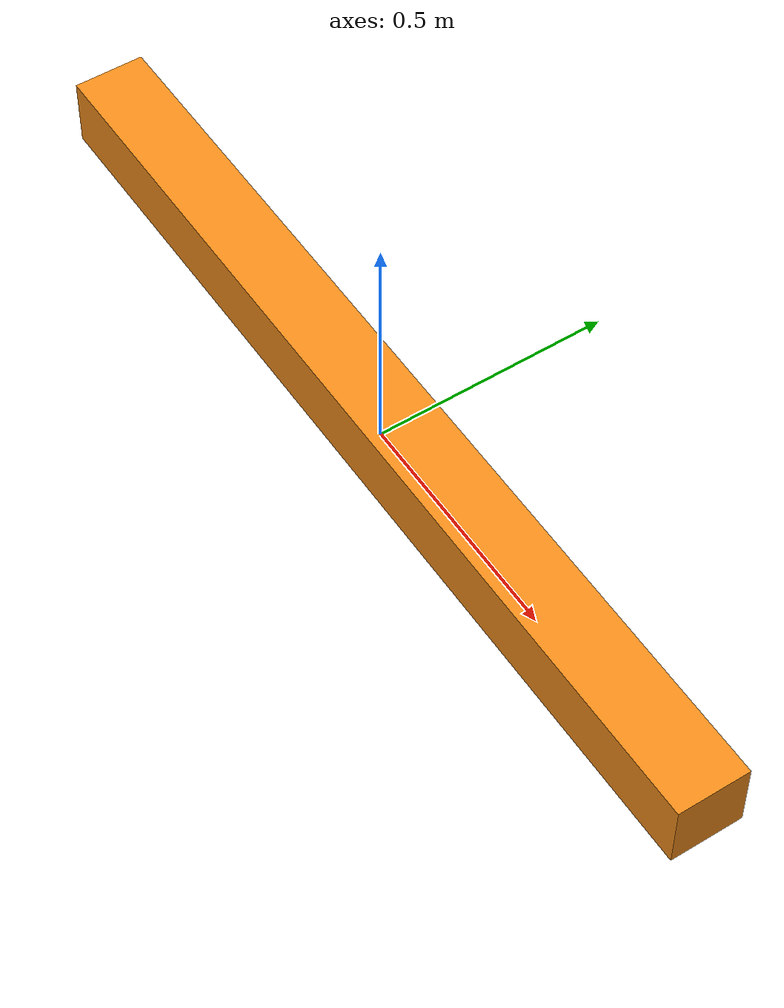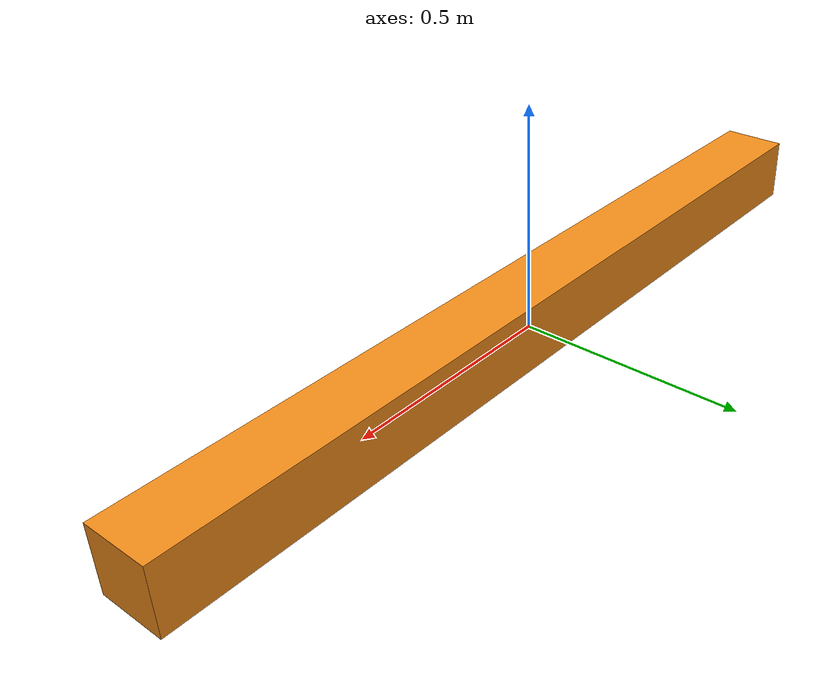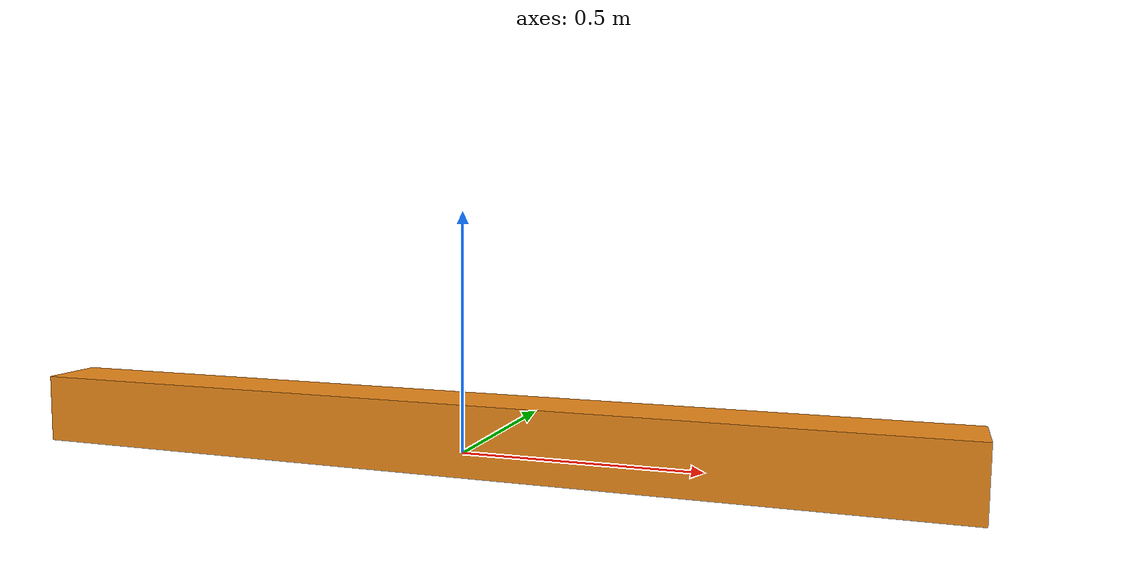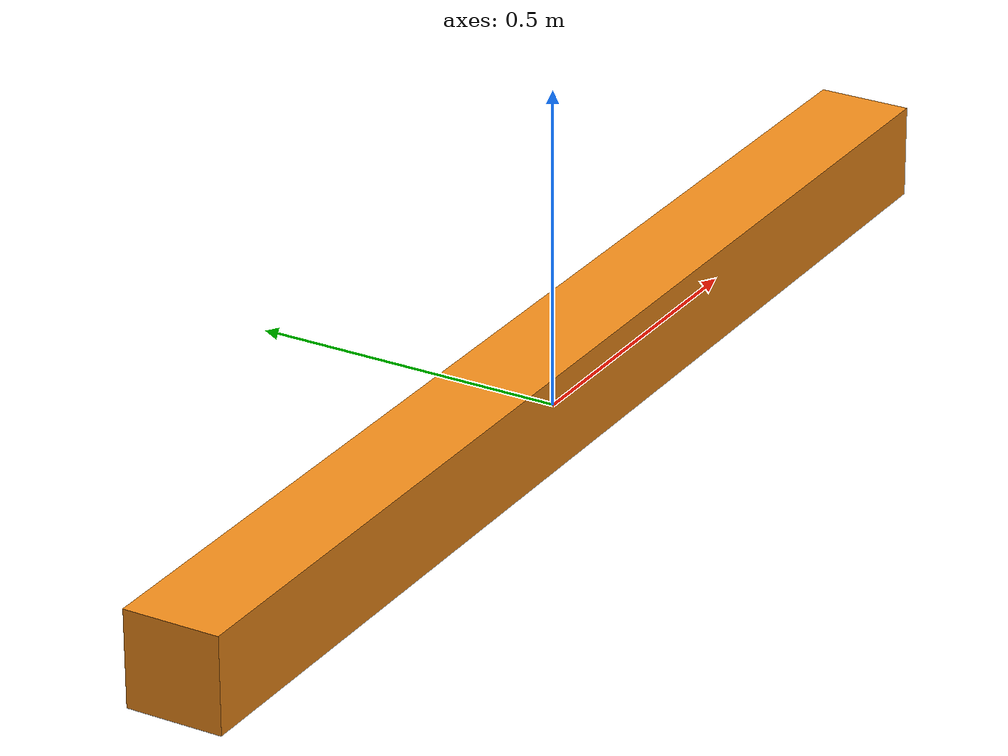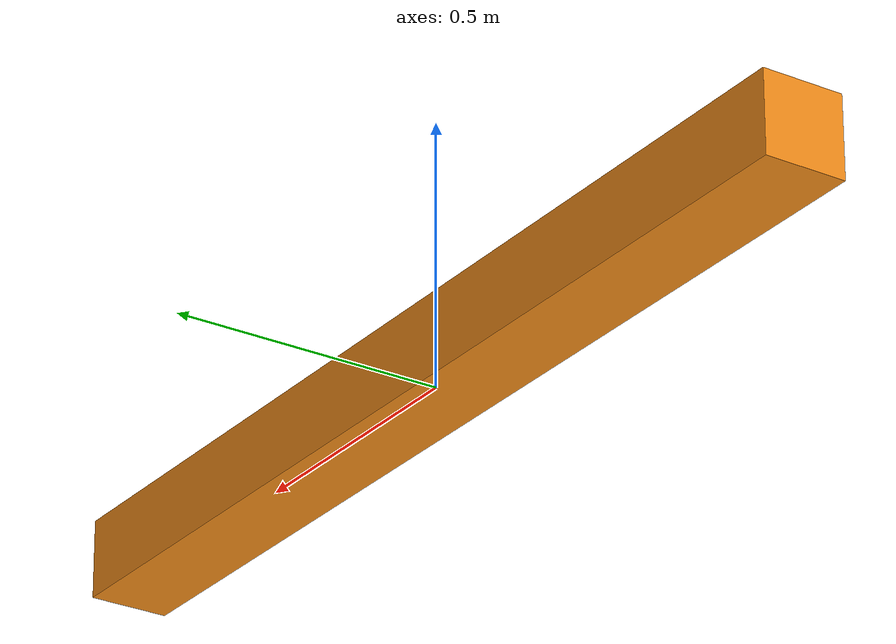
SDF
<?xml version='1.0'?>
<sdf version="1.4">
<model name="orange large object">
  <pose>0 0 0.04 0 0 0</pose>
    <link name="grab_here">
      <inertial>
        <mass>2</mass>
        <inertia>
          <ixx>0.083</ixx>
          <ixy>0.0</ixy>
          <ixz>0.0</ixz>
          <iyy>0.083</iyy>
          <iyz>0.0</iyz>
          <izz>0.083</izz>
        </inertia>
      </inertial>
      <collision name="collision">
        <geometry>
          <box>
            <size>2 0.2 0.2</size>
          </box>
        </geometry>
      </collision>
      <visual name="visual">
        <geometry>
          <box>
            <size>2 0.15 0.15</size>
          </box>
        </geometry>
        <material>
        	<script>
              <uri>file://media/materials/scripts/gazebo.material</uri>
              <name>Gazebo/Orange</name>
            </script>
        </material>
      </visual>
    </link>
  </model>
</sdf>
